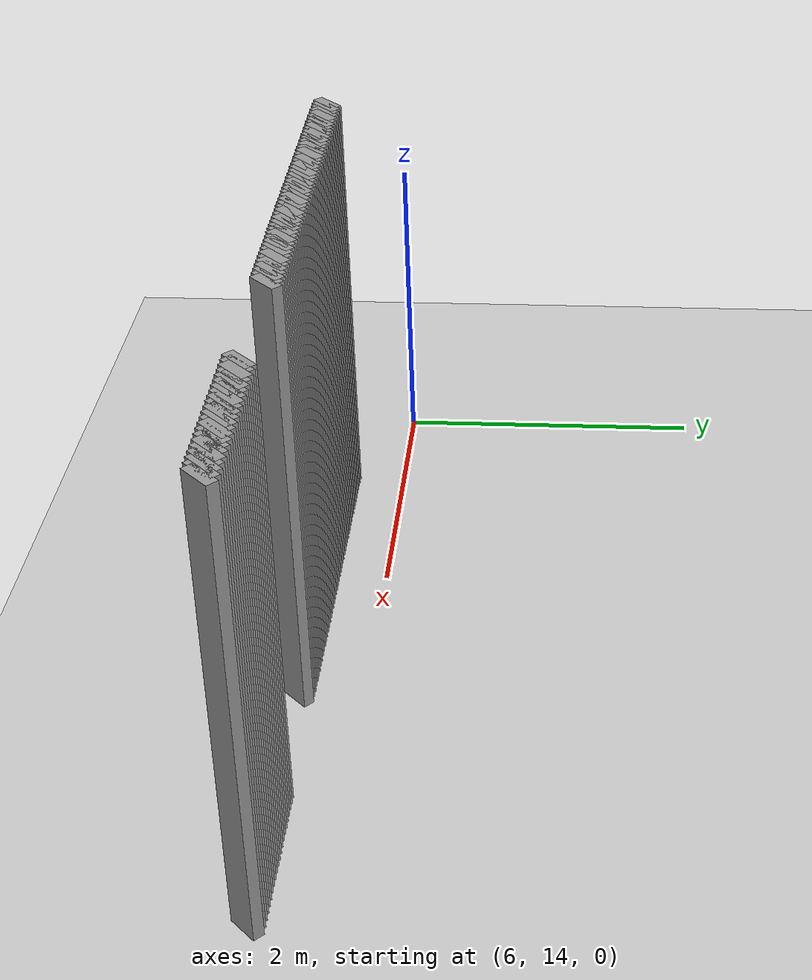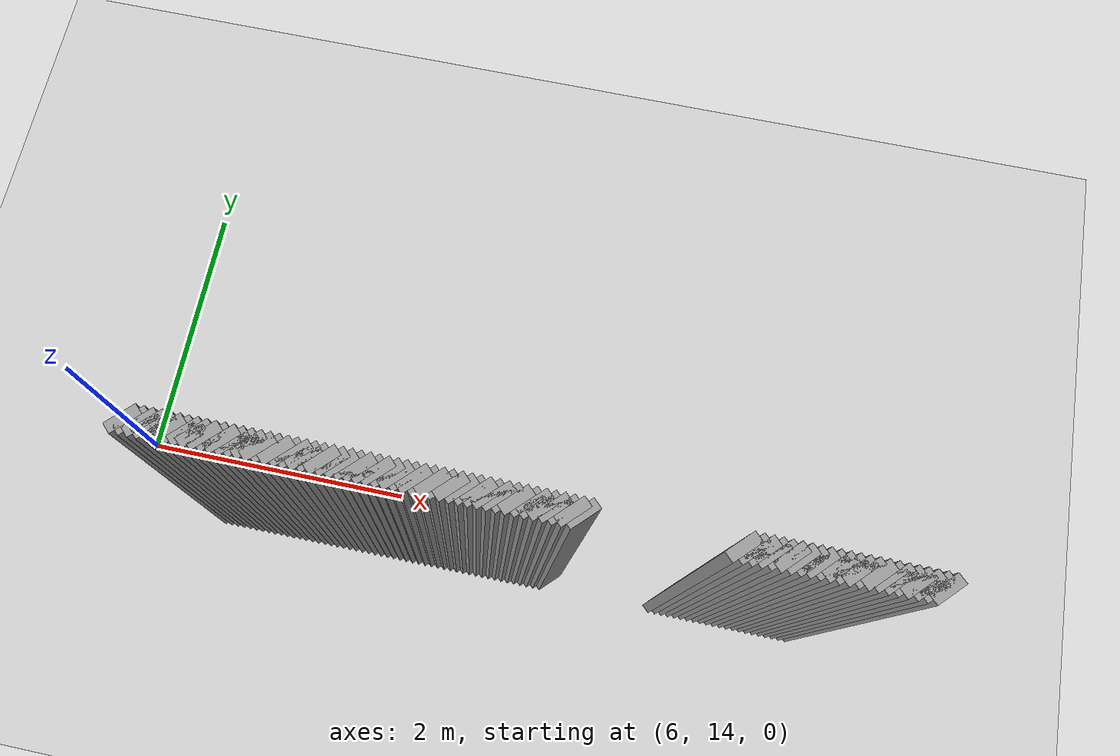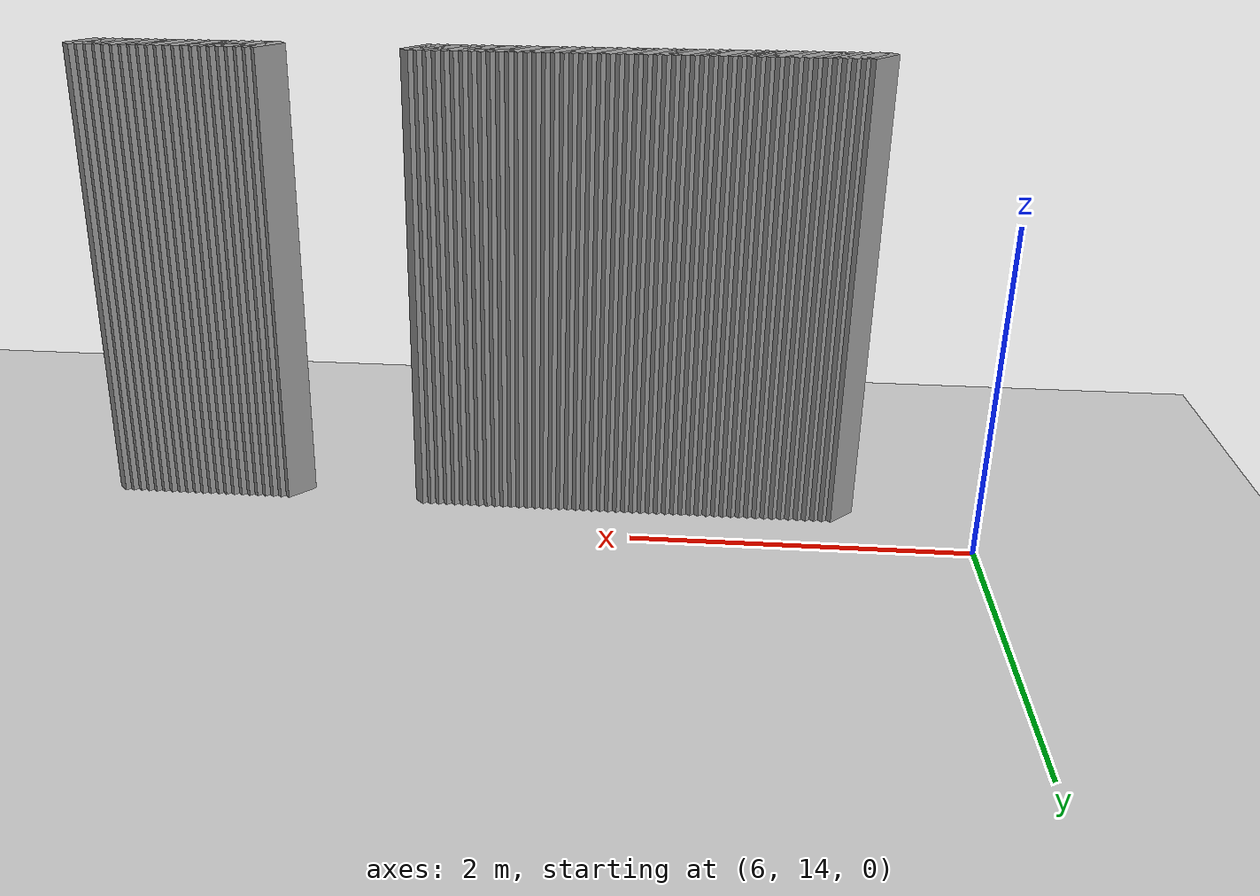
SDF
<sdf version="1.5">
 <world name="default">
  <include><uri>model://ground_plane</uri></include>
  <include><uri>model://sun</uri></include>
  <model name="grey_wall_891">
   <static>1</static>
   <link name="link">
    <pose>6.75 13.600000000000001  1.4 0 0 -0.7853981633974483</pose>
    <collision name="collision">
     <geometry><box><size>0.07071067811865576 .2  2.8</size></box></geometry>
    </collision>
    <visual name="visual">
     <cast_shadows>0</cast_shadows>
     <geometry><box><size>0.07071067811865576 .2  2.8</size></box></geometry>
     <material>
      <script>
       <uri>model://grey_wall/materials/scripts</uri>
       <uri>model://grey_wall/materials/textures</uri>
       <name>vrc/grey_wall</name>
      </script>
     </material>
    </visual>
   </link>
  </model>
  <model name="grey_wall_892">
   <static>1</static>
   <link name="link">
    <pose>6.800000000000001 13.600000000000001  1.4 0 0 -0.7853981633974483</pose>
    <collision name="collision">
     <geometry><box><size>0.07071067811865576 .2  2.8</size></box></geometry>
    </collision>
    <visual name="visual">
     <cast_shadows>0</cast_shadows>
     <geometry><box><size>0.07071067811865576 .2  2.8</size></box></geometry>
     <material>
      <script>
       <uri>model://grey_wall/materials/scripts</uri>
       <uri>model://grey_wall/materials/textures</uri>
       <name>vrc/grey_wall</name>
      </script>
     </material>
    </visual>
   </link>
  </model>
  <model name="grey_wall_893">
   <static>1</static>
   <link name="link">
    <pose>6.8500000000000005 13.600000000000001  1.4 0 0 -0.7853981633974483</pose>
    <collision name="collision">
     <geometry><box><size>0.07071067811865576 .2  2.8</size></box></geometry>
    </collision>
    <visual name="visual">
     <cast_shadows>0</cast_shadows>
     <geometry><box><size>0.07071067811865576 .2  2.8</size></box></geometry>
     <material>
      <script>
       <uri>model://grey_wall/materials/scripts</uri>
       <uri>model://grey_wall/materials/textures</uri>
       <name>vrc/grey_wall</name>
      </script>
     </material>
    </visual>
   </link>
  </model>
  <model name="grey_wall_894">
   <static>1</static>
   <link name="link">
    <pose>6.9 13.600000000000001  1.4 0 0 -0.7853981633974483</pose>
    <collision name="collision">
     <geometry><box><size>0.07071067811865576 .2  2.8</size></box></geometry>
    </collision>
    <visual name="visual">
     <cast_shadows>0</cast_shadows>
     <geometry><box><size>0.07071067811865576 .2  2.8</size></box></geometry>
     <material>
      <script>
       <uri>model://grey_wall/materials/scripts</uri>
       <uri>model://grey_wall/materials/textures</uri>
       <name>vrc/grey_wall</name>
      </script>
     </material>
    </visual>
   </link>
  </model>
  <model name="grey_wall_895">
   <static>1</static>
   <link name="link">
    <pose>6.95 13.600000000000001  1.4 0 0 -0.7853981633974483</pose>
    <collision name="collision">
     <geometry><box><size>0.07071067811865576 .2  2.8</size></box></geometry>
    </collision>
    <visual name="visual">
     <cast_shadows>0</cast_shadows>
     <geometry><box><size>0.07071067811865576 .2  2.8</size></box></geometry>
     <material>
      <script>
       <uri>model://grey_wall/materials/scripts</uri>
       <uri>model://grey_wall/materials/textures</uri>
       <name>vrc/grey_wall</name>
      </script>
     </material>
    </visual>
   </link>
  </model>
  <model name="grey_wall_896">
   <static>1</static>
   <link name="link">
    <pose>7.0 13.600000000000001  1.4 0 0 -0.7853981633974483</pose>
    <collision name="collision">
     <geometry><box><size>0.07071067811865576 .2  2.8</size></box></geometry>
    </collision>
    <visual name="visual">
     <cast_shadows>0</cast_shadows>
     <geometry><box><size>0.07071067811865576 .2  2.8</size></box></geometry>
     <material>
      <script>
       <uri>model://grey_wall/materials/scripts</uri>
       <uri>model://grey_wall/materials/textures</uri>
       <name>vrc/grey_wall</name>
      </script>
     </material>
    </visual>
   </link>
  </model>
  <model name="grey_wall_897">
   <static>1</static>
   <link name="link">
    <pose>7.050000000000001 13.600000000000001  1.4 0 0 -0.7853981633974483</pose>
    <collision name="collision">
     <geometry><box><size>0.07071067811865576 .2  2.8</size></box></geometry>
    </collision>
    <visual name="visual">
     <cast_shadows>0</cast_shadows>
     <geometry><box><size>0.07071067811865576 .2  2.8</size></box></geometry>
     <material>
      <script>
       <uri>model://grey_wall/materials/scripts</uri>
       <uri>model://grey_wall/materials/textures</uri>
       <name>vrc/grey_wall</name>
      </script>
     </material>
    </visual>
   </link>
  </model>
  <model name="grey_wall_898">
   <static>1</static>
   <link name="link">
    <pose>7.1000000000000005 13.600000000000001  1.4 0 0 -0.7853981633974483</pose>
    <collision name="collision">
     <geometry><box><size>0.07071067811865576 .2  2.8</size></box></geometry>
    </collision>
    <visual name="visual">
     <cast_shadows>0</cast_shadows>
     <geometry><box><size>0.07071067811865576 .2  2.8</size></box></geometry>
     <material>
      <script>
       <uri>model://grey_wall/materials/scripts</uri>
       <uri>model://grey_wall/materials/textures</uri>
       <name>vrc/grey_wall</name>
      </script>
     </material>
    </visual>
   </link>
  </model>
  <model name="grey_wall_899">
   <static>1</static>
   <link name="link">
    <pose>7.15 13.600000000000001  1.4 0 0 -0.7853981633974483</pose>
    <collision name="collision">
     <geometry><box><size>0.07071067811865576 .2  2.8</size></box></geometry>
    </collision>
    <visual name="visual">
     <cast_shadows>0</cast_shadows>
     <geometry><box><size>0.07071067811865576 .2  2.8</size></box></geometry>
     <material>
      <script>
       <uri>model://grey_wall/materials/scripts</uri>
       <uri>model://grey_wall/materials/textures</uri>
       <name>vrc/grey_wall</name>
      </script>
     </material>
    </visual>
   </link>
  </model>
  <model name="grey_wall_900">
   <static>1</static>
   <link name="link">
    <pose>7.2 13.600000000000001  1.4 0 0 -0.7853981633974483</pose>
    <collision name="collision">
     <geometry><box><size>0.07071067811865576 .2  2.8</size></box></geometry>
    </collision>
    <visual name="visual">
     <cast_shadows>0</cast_shadows>
     <geometry><box><size>0.07071067811865576 .2  2.8</size></box></geometry>
     <material>
      <script>
       <uri>model://grey_wall/materials/scripts</uri>
       <uri>model://grey_wall/materials/textures</uri>
       <name>vrc/grey_wall</name>
      </script>
     </material>
    </visual>
   </link>
  </model>
  <model name="grey_wall_901">
   <static>1</static>
   <link name="link">
    <pose>7.25 13.600000000000001  1.4 0 0 -0.7853981633974483</pose>
    <collision name="collision">
     <geometry><box><size>0.07071067811865576 .2  2.8</size></box></geometry>
    </collision>
    <visual name="visual">
     <cast_shadows>0</cast_shadows>
     <geometry><box><size>0.07071067811865576 .2  2.8</size></box></geometry>
     <material>
      <script>
       <uri>model://grey_wall/materials/scripts</uri>
       <uri>model://grey_wall/materials/textures</uri>
       <name>vrc/grey_wall</name>
      </script>
     </material>
    </visual>
   </link>
  </model>
  <model name="grey_wall_902">
   <static>1</static>
   <link name="link">
    <pose>7.300000000000001 13.600000000000001  1.4 0 0 -0.7853981633974483</pose>
    <collision name="collision">
     <geometry><box><size>0.07071067811865576 .2  2.8</size></box></geometry>
    </collision>
    <visual name="visual">
     <cast_shadows>0</cast_shadows>
     <geometry><box><size>0.07071067811865576 .2  2.8</size></box></geometry>
     <material>
      <script>
       <uri>model://grey_wall/materials/scripts</uri>
       <uri>model://grey_wall/materials/textures</uri>
       <name>vrc/grey_wall</name>
      </script>
     </material>
    </visual>
   </link>
  </model>
  <model name="grey_wall_903">
   <static>1</static>
   <link name="link">
    <pose>7.3500000000000005 13.600000000000001  1.4 0 0 -0.7853981633974483</pose>
    <collision name="collision">
     <geometry><box><size>0.07071067811865576 .2  2.8</size></box></geometry>
    </collision>
    <visual name="visual">
     <cast_shadows>0</cast_shadows>
     <geometry><box><size>0.07071067811865576 .2  2.8</size></box></geometry>
     <material>
      <script>
       <uri>model://grey_wall/materials/scripts</uri>
       <uri>model://grey_wall/materials/textures</uri>
       <name>vrc/grey_wall</name>
      </script>
     </material>
    </visual>
   </link>
  </model>
  <model name="grey_wall_904">
   <static>1</static>
   <link name="link">
    <pose>7.4 13.600000000000001  1.4 0 0 -0.7853981633974483</pose>
    <collision name="collision">
     <geometry><box><size>0.07071067811865576 .2  2.8</size></box></geometry>
    </collision>
    <visual name="visual">
     <cast_shadows>0</cast_shadows>
     <geometry><box><size>0.07071067811865576 .2  2.8</size></box></geometry>
     <material>
      <script>
       <uri>model://grey_wall/materials/scripts</uri>
       <uri>model://grey_wall/materials/textures</uri>
       <name>vrc/grey_wall</name>
      </script>
     </material>
    </visual>
   </link>
  </model>
  <model name="grey_wall_905">
   <static>1</static>
   <link name="link">
    <pose>7.45 13.600000000000001  1.4 0 0 -0.7853981633974483</pose>
    <collision name="collision">
     <geometry><box><size>0.07071067811865576 .2  2.8</size></box></geometry>
    </collision>
    <visual name="visual">
     <cast_shadows>0</cast_shadows>
     <geometry><box><size>0.07071067811865576 .2  2.8</size></box></geometry>
     <material>
      <script>
       <uri>model://grey_wall/materials/scripts</uri>
       <uri>model://grey_wall/materials/textures</uri>
       <name>vrc/grey_wall</name>
      </script>
     </material>
    </visual>
   </link>
  </model>
  <model name="grey_wall_906">
   <static>1</static>
   <link name="link">
    <pose>7.5 13.600000000000001  1.4 0 0 -0.7853981633974483</pose>
    <collision name="collision">
     <geometry><box><size>0.07071067811865576 .2  2.8</size></box></geometry>
    </collision>
    <visual name="visual">
     <cast_shadows>0</cast_shadows>
     <geometry><box><size>0.07071067811865576 .2  2.8</size></box></geometry>
     <material>
      <script>
       <uri>model://grey_wall/materials/scripts</uri>
       <uri>model://grey_wall/materials/textures</uri>
       <name>vrc/grey_wall</name>
      </script>
     </material>
    </visual>
   </link>
  </model>
  <model name="grey_wall_907">
   <static>1</static>
   <link name="link">
    <pose>7.550000000000001 13.600000000000001  1.4 0 0 -0.7853981633974483</pose>
    <collision name="collision">
     <geometry><box><size>0.07071067811865576 .2  2.8</size></box></geometry>
    </collision>
    <visual name="visual">
     <cast_shadows>0</cast_shadows>
     <geometry><box><size>0.07071067811865576 .2  2.8</size></box></geometry>
     <material>
      <script>
       <uri>model://grey_wall/materials/scripts</uri>
       <uri>model://grey_wall/materials/textures</uri>
       <name>vrc/grey_wall</name>
      </script>
     </material>
    </visual>
   </link>
  </model>
  <model name="grey_wall_908">
   <static>1</static>
   <link name="link">
    <pose>7.6000000000000005 13.600000000000001  1.4 0 0 -0.7853981633974483</pose>
    <collision name="collision">
     <geometry><box><size>0.07071067811865576 .2  2.8</size></box></geometry>
    </collision>
    <visual name="visual">
     <cast_shadows>0</cast_shadows>
     <geometry><box><size>0.07071067811865576 .2  2.8</size></box></geometry>
     <material>
      <script>
       <uri>model://grey_wall/materials/scripts</uri>
       <uri>model://grey_wall/materials/textures</uri>
       <name>vrc/grey_wall</name>
      </script>
     </material>
    </visual>
   </link>
  </model>
  <model name="grey_wall_909">
   <static>1</static>
   <link name="link">
    <pose>7.65 13.600000000000001  1.4 0 0 -0.7853981633974483</pose>
    <collision name="collision">
     <geometry><box><size>0.07071067811865576 .2  2.8</size></box></geometry>
    </collision>
    <visual name="visual">
     <cast_shadows>0</cast_shadows>
     <geometry><box><size>0.07071067811865576 .2  2.8</size></box></geometry>
     <material>
      <script>
       <uri>model://grey_wall/materials/scripts</uri>
       <uri>model://grey_wall/materials/textures</uri>
       <name>vrc/grey_wall</name>
      </script>
     </material>
    </visual>
   </link>
  </model>
  <model name="grey_wall_910">
   <static>1</static>
   <link name="link">
    <pose>7.7 13.600000000000001  1.4 0 0 -0.7853981633974483</pose>
    <collision name="collision">
     <geometry><box><size>0.07071067811865576 .2  2.8</size></box></geometry>
    </collision>
    <visual name="visual">
     <cast_shadows>0</cast_shadows>
     <geometry><box><size>0.07071067811865576 .2  2.8</size></box></geometry>
     <material>
      <script>
       <uri>model://grey_wall/materials/scripts</uri>
       <uri>model://grey_wall/materials/textures</uri>
       <name>vrc/grey_wall</name>
      </script>
     </material>
    </visual>
   </link>
  </model>
  <model name="grey_wall_911">
   <static>1</static>
   <link name="link">
    <pose>7.75 13.600000000000001  1.4 0 0 -0.7853981633974483</pose>
    <collision name="collision">
     <geometry><box><size>0.07071067811865576 .2  2.8</size></box></geometry>
    </collision>
    <visual name="visual">
     <cast_shadows>0</cast_shadows>
     <geometry><box><size>0.07071067811865576 .2  2.8</size></box></geometry>
     <material>
      <script>
       <uri>model://grey_wall/materials/scripts</uri>
       <uri>model://grey_wall/materials/textures</uri>
       <name>vrc/grey_wall</name>
      </script>
     </material>
    </visual>
   </link>
  </model>
  <model name="grey_wall_912">
   <static>1</static>
   <link name="link">
    <pose>7.800000000000001 13.600000000000001  1.4 0 0 -0.7853981633974483</pose>
    <collision name="collision">
     <geometry><box><size>0.07071067811865576 .2  2.8</size></box></geometry>
    </collision>
    <visual name="visual">
     <cast_shadows>0</cast_shadows>
     <geometry><box><size>0.07071067811865576 .2  2.8</size></box></geometry>
     <material>
      <script>
       <uri>model://grey_wall/materials/scripts</uri>
       <uri>model://grey_wall/materials/textures</uri>
       <name>vrc/grey_wall</name>
      </script>
     </material>
    </visual>
   </link>
  </model>
  <model name="grey_wall_913">
   <static>1</static>
   <link name="link">
    <pose>7.8500000000000005 13.600000000000001  1.4 0 0 -0.7853981633974483</pose>
    <collision name="collision">
     <geometry><box><size>0.07071067811865576 .2  2.8</size></box></geometry>
    </collision>
    <visual name="visual">
     <cast_shadows>0</cast_shadows>
     <geometry><box><size>0.07071067811865576 .2  2.8</size></box></geometry>
     <material>
      <script>
       <uri>model://grey_wall/materials/scripts</uri>
       <uri>model://grey_wall/materials/textures</uri>
       <name>vrc/grey_wall</name>
      </script>
     </material>
    </visual>
   </link>
  </model>
  <model name="grey_wall_914">
   <static>1</static>
   <link name="link">
    <pose>7.9 13.600000000000001  1.4 0 0 -0.7853981633974483</pose>
    <collision name="collision">
     <geometry><box><size>0.07071067811865576 .2  2.8</size></box></geometry>
    </collision>
    <visual name="visual">
     <cast_shadows>0</cast_shadows>
     <geometry><box><size>0.07071067811865576 .2  2.8</size></box></geometry>
     <material>
      <script>
       <uri>model://grey_wall/materials/scripts</uri>
       <uri>model://grey_wall/materials/textures</uri>
       <name>vrc/grey_wall</name>
      </script>
     </material>
    </visual>
   </link>
  </model>
  <model name="grey_wall_915">
   <static>1</static>
   <link name="link">
    <pose>7.95 13.600000000000001  1.4 0 0 -0.7853981633974483</pose>
    <collision name="collision">
     <geometry><box><size>0.07071067811865576 .2  2.8</size></box></geometry>
    </collision>
    <visual name="visual">
     <cast_shadows>0</cast_shadows>
     <geometry><box><size>0.07071067811865576 .2  2.8</size></box></geometry>
     <material>
      <script>
       <uri>model://grey_wall/materials/scripts</uri>
       <uri>model://grey_wall/materials/textures</uri>
       <name>vrc/grey_wall</name>
      </script>
     </material>
    </visual>
   </link>
  </model>
  <model name="grey_wall_916">
   <static>1</static>
   <link name="link">
    <pose>8.0 13.600000000000001  1.4 0 0 -0.7853981633974483</pose>
    <collision name="collision">
     <geometry><box><size>0.07071067811865576 .2  2.8</size></box></geometry>
    </collision>
    <visual name="visual">
     <cast_shadows>0</cast_shadows>
     <geometry><box><size>0.07071067811865576 .2  2.8</size></box></geometry>
     <material>
      <script>
       <uri>model://grey_wall/materials/scripts</uri>
       <uri>model://grey_wall/materials/textures</uri>
       <name>vrc/grey_wall</name>
      </script>
     </material>
    </visual>
   </link>
  </model>
  <model name="grey_wall_917">
   <static>1</static>
   <link name="link">
    <pose>8.05 13.600000000000001  1.4 0 0 -0.7853981633974483</pose>
    <collision name="collision">
     <geometry><box><size>0.07071067811865576 .2  2.8</size></box></geometry>
    </collision>
    <visual name="visual">
     <cast_shadows>0</cast_shadows>
     <geometry><box><size>0.07071067811865576 .2  2.8</size></box></geometry>
     <material>
      <script>
       <uri>model://grey_wall/materials/scripts</uri>
       <uri>model://grey_wall/materials/textures</uri>
       <name>vrc/grey_wall</name>
      </script>
     </material>
    </visual>
   </link>
  </model>
  <model name="grey_wall_918">
   <static>1</static>
   <link name="link">
    <pose>8.1 13.600000000000001  1.4 0 0 -0.7853981633974483</pose>
    <collision name="collision">
     <geometry><box><size>0.07071067811865576 .2  2.8</size></box></geometry>
    </collision>
    <visual name="visual">
     <cast_shadows>0</cast_shadows>
     <geometry><box><size>0.07071067811865576 .2  2.8</size></box></geometry>
     <material>
      <script>
       <uri>model://grey_wall/materials/scripts</uri>
       <uri>model://grey_wall/materials/textures</uri>
       <name>vrc/grey_wall</name>
      </script>
     </material>
    </visual>
   </link>
  </model>
  <model name="grey_wall_919">
   <static>1</static>
   <link name="link">
    <pose>8.15 13.600000000000001  1.4 0 0 -0.7853981633974483</pose>
    <collision name="collision">
     <geometry><box><size>0.07071067811865576 .2  2.8</size></box></geometry>
    </collision>
    <visual name="visual">
     <cast_shadows>0</cast_shadows>
     <geometry><box><size>0.07071067811865576 .2  2.8</size></box></geometry>
     <material>
      <script>
       <uri>model://grey_wall/materials/scripts</uri>
       <uri>model://grey_wall/materials/textures</uri>
       <name>vrc/grey_wall</name>
      </script>
     </material>
    </visual>
   </link>
  </model>
  <model name="grey_wall_920">
   <static>1</static>
   <link name="link">
    <pose>8.200000000000001 13.600000000000001  1.4 0 0 -0.7853981633974483</pose>
    <collision name="collision">
     <geometry><box><size>0.07071067811865576 .2  2.8</size></box></geometry>
    </collision>
    <visual name="visual">
     <cast_shadows>0</cast_shadows>
     <geometry><box><size>0.07071067811865576 .2  2.8</size></box></geometry>
     <material>
      <script>
       <uri>model://grey_wall/materials/scripts</uri>
       <uri>model://grey_wall/materials/textures</uri>
       <name>vrc/grey_wall</name>
      </script>
     </material>
    </visual>
   </link>
  </model>
  <model name="grey_wall_921">
   <static>1</static>
   <link name="link">
    <pose>8.25 13.600000000000001  1.4 0 0 -0.7853981633974483</pose>
    <collision name="collision">
     <geometry><box><size>0.07071067811865576 .2  2.8</size></box></geometry>
    </collision>
    <visual name="visual">
     <cast_shadows>0</cast_shadows>
     <geometry><box><size>0.07071067811865576 .2  2.8</size></box></geometry>
     <material>
      <script>
       <uri>model://grey_wall/materials/scripts</uri>
       <uri>model://grey_wall/materials/textures</uri>
       <name>vrc/grey_wall</name>
      </script>
     </material>
    </visual>
   </link>
  </model>
  <model name="grey_wall_922">
   <static>1</static>
   <link name="link">
    <pose>8.3 13.600000000000001  1.4 0 0 -0.7853981633974483</pose>
    <collision name="collision">
     <geometry><box><size>0.07071067811865576 .2  2.8</size></box></geometry>
    </collision>
    <visual name="visual">
     <cast_shadows>0</cast_shadows>
     <geometry><box><size>0.07071067811865576 .2  2.8</size></box></geometry>
     <material>
      <script>
       <uri>model://grey_wall/materials/scripts</uri>
       <uri>model://grey_wall/materials/textures</uri>
       <name>vrc/grey_wall</name>
      </script>
     </material>
    </visual>
   </link>
  </model>
  <model name="grey_wall_923">
   <static>1</static>
   <link name="link">
    <pose>8.35 13.600000000000001  1.4 0 0 -0.7853981633974483</pose>
    <collision name="collision">
     <geometry><box><size>0.07071067811865576 .2  2.8</size></box></geometry>
    </collision>
    <visual name="visual">
     <cast_shadows>0</cast_shadows>
     <geometry><box><size>0.07071067811865576 .2  2.8</size></box></geometry>
     <material>
      <script>
       <uri>model://grey_wall/materials/scripts</uri>
       <uri>model://grey_wall/materials/textures</uri>
       <name>vrc/grey_wall</name>
      </script>
     </material>
    </visual>
   </link>
  </model>
  <model name="grey_wall_924">
   <static>1</static>
   <link name="link">
    <pose>8.4 13.600000000000001  1.4 0 0 -0.7853981633974483</pose>
    <collision name="collision">
     <geometry><box><size>0.07071067811865576 .2  2.8</size></box></geometry>
    </collision>
    <visual name="visual">
     <cast_shadows>0</cast_shadows>
     <geometry><box><size>0.07071067811865576 .2  2.8</size></box></geometry>
     <material>
      <script>
       <uri>model://grey_wall/materials/scripts</uri>
       <uri>model://grey_wall/materials/textures</uri>
       <name>vrc/grey_wall</name>
      </script>
     </material>
    </visual>
   </link>
  </model>
  <model name="grey_wall_925">
   <static>1</static>
   <link name="link">
    <pose>8.450000000000001 13.600000000000001  1.4 0 0 -0.7853981633974483</pose>
    <collision name="collision">
     <geometry><box><size>0.07071067811865576 .2  2.8</size></box></geometry>
    </collision>
    <visual name="visual">
     <cast_shadows>0</cast_shadows>
     <geometry><box><size>0.07071067811865576 .2  2.8</size></box></geometry>
     <material>
      <script>
       <uri>model://grey_wall/materials/scripts</uri>
       <uri>model://grey_wall/materials/textures</uri>
       <name>vrc/grey_wall</name>
      </script>
     </material>
    </visual>
   </link>
  </model>
  <model name="grey_wall_926">
   <static>1</static>
   <link name="link">
    <pose>8.5 13.600000000000001  1.4 0 0 -0.7853981633974483</pose>
    <collision name="collision">
     <geometry><box><size>0.07071067811865576 .2  2.8</size></box></geometry>
    </collision>
    <visual name="visual">
     <cast_shadows>0</cast_shadows>
     <geometry><box><size>0.07071067811865576 .2  2.8</size></box></geometry>
     <material>
      <script>
       <uri>model://grey_wall/materials/scripts</uri>
       <uri>model://grey_wall/materials/textures</uri>
       <name>vrc/grey_wall</name>
      </script>
     </material>
    </visual>
   </link>
  </model>
  <model name="grey_wall_927">
   <static>1</static>
   <link name="link">
    <pose>8.55 13.600000000000001  1.4 0 0 -0.7853981633974483</pose>
    <collision name="collision">
     <geometry><box><size>0.07071067811865576 .2  2.8</size></box></geometry>
    </collision>
    <visual name="visual">
     <cast_shadows>0</cast_shadows>
     <geometry><box><size>0.07071067811865576 .2  2.8</size></box></geometry>
     <material>
      <script>
       <uri>model://grey_wall/materials/scripts</uri>
       <uri>model://grey_wall/materials/textures</uri>
       <name>vrc/grey_wall</name>
      </script>
     </material>
    </visual>
   </link>
  </model>
  <model name="grey_wall_928">
   <static>1</static>
   <link name="link">
    <pose>8.6 13.600000000000001  1.4 0 0 -0.7853981633974483</pose>
    <collision name="collision">
     <geometry><box><size>0.07071067811865576 .2  2.8</size></box></geometry>
    </collision>
    <visual name="visual">
     <cast_shadows>0</cast_shadows>
     <geometry><box><size>0.07071067811865576 .2  2.8</size></box></geometry>
     <material>
      <script>
       <uri>model://grey_wall/materials/scripts</uri>
       <uri>model://grey_wall/materials/textures</uri>
       <name>vrc/grey_wall</name>
      </script>
     </material>
    </visual>
   </link>
  </model>
  <model name="grey_wall_929">
   <static>1</static>
   <link name="link">
    <pose>8.65 13.600000000000001  1.4 0 0 -0.7853981633974483</pose>
    <collision name="collision">
     <geometry><box><size>0.07071067811865576 .2  2.8</size></box></geometry>
    </collision>
    <visual name="visual">
     <cast_shadows>0</cast_shadows>
     <geometry><box><size>0.07071067811865576 .2  2.8</size></box></geometry>
     <material>
      <script>
       <uri>model://grey_wall/materials/scripts</uri>
       <uri>model://grey_wall/materials/textures</uri>
       <name>vrc/grey_wall</name>
      </script>
     </material>
    </visual>
   </link>
  </model>
  <model name="grey_wall_930">
   <static>1</static>
   <link name="link">
    <pose>8.700000000000001 13.600000000000001  1.4 0 0 -0.7853981633974483</pose>
    <collision name="collision">
     <geometry><box><size>0.07071067811865576 .2  2.8</size></box></geometry>
    </collision>
    <visual name="visual">
     <cast_shadows>0</cast_shadows>
     <geometry><box><size>0.07071067811865576 .2  2.8</size></box></geometry>
     <material>
      <script>
       <uri>model://grey_wall/materials/scripts</uri>
       <uri>model://grey_wall/materials/textures</uri>
       <name>vrc/grey_wall</name>
      </script>
     </material>
    </visual>
   </link>
  </model>
  <model name="grey_wall_931">
   <static>1</static>
   <link name="link">
    <pose>8.75 13.600000000000001  1.4 0 0 -0.7853981633974483</pose>
    <collision name="collision">
     <geometry><box><size>0.07071067811865576 .2  2.8</size></box></geometry>
    </collision>
    <visual name="visual">
     <cast_shadows>0</cast_shadows>
     <geometry><box><size>0.07071067811865576 .2  2.8</size></box></geometry>
     <material>
      <script>
       <uri>model://grey_wall/materials/scripts</uri>
       <uri>model://grey_wall/materials/textures</uri>
       <name>vrc/grey_wall</name>
      </script>
     </material>
    </visual>
   </link>
  </model>
  <model name="grey_wall_932">
   <static>1</static>
   <link name="link">
    <pose>8.8 13.600000000000001  1.4 0 0 -0.7853981633974483</pose>
    <collision name="collision">
     <geometry><box><size>0.07071067811865576 .2  2.8</size></box></geometry>
    </collision>
    <visual name="visual">
     <cast_shadows>0</cast_shadows>
     <geometry><box><size>0.07071067811865576 .2  2.8</size></box></geometry>
     <material>
      <script>
       <uri>model://grey_wall/materials/scripts</uri>
       <uri>model://grey_wall/materials/textures</uri>
       <name>vrc/grey_wall</name>
      </script>
     </material>
    </visual>
   </link>
  </model>
  <model name="grey_wall_933">
   <static>1</static>
   <link name="link">
    <pose>8.85 13.600000000000001  1.4 0 0 -0.7853981633974483</pose>
    <collision name="collision">
     <geometry><box><size>0.07071067811865576 .2  2.8</size></box></geometry>
    </collision>
    <visual name="visual">
     <cast_shadows>0</cast_shadows>
     <geometry><box><size>0.07071067811865576 .2  2.8</size></box></geometry>
     <material>
      <script>
       <uri>model://grey_wall/materials/scripts</uri>
       <uri>model://grey_wall/materials/textures</uri>
       <name>vrc/grey_wall</name>
      </script>
     </material>
    </visual>
   </link>
  </model>
  <model name="grey_wall_934">
   <static>1</static>
   <link name="link">
    <pose>8.9 13.600000000000001  1.4 0 0 -0.7853981633974483</pose>
    <collision name="collision">
     <geometry><box><size>0.07071067811865576 .2  2.8</size></box></geometry>
    </collision>
    <visual name="visual">
     <cast_shadows>0</cast_shadows>
     <geometry><box><size>0.07071067811865576 .2  2.8</size></box></geometry>
     <material>
      <script>
       <uri>model://grey_wall/materials/scripts</uri>
       <uri>model://grey_wall/materials/textures</uri>
       <name>vrc/grey_wall</name>
      </script>
     </material>
    </visual>
   </link>
  </model>
  <model name="grey_wall_935">
   <static>1</static>
   <link name="link">
    <pose>8.950000000000001 13.600000000000001  1.4 0 0 -0.7853981633974483</pose>
    <collision name="collision">
     <geometry><box><size>0.07071067811865576 .2  2.8</size></box></geometry>
    </collision>
    <visual name="visual">
     <cast_shadows>0</cast_shadows>
     <geometry><box><size>0.07071067811865576 .2  2.8</size></box></geometry>
     <material>
      <script>
       <uri>model://grey_wall/materials/scripts</uri>
       <uri>model://grey_wall/materials/textures</uri>
       <name>vrc/grey_wall</name>
      </script>
     </material>
    </visual>
   </link>
  </model>
  <model name="grey_wall_936">
   <static>1</static>
   <link name="link">
    <pose>9.0 13.600000000000001  1.4 0 0 -0.7853981633974483</pose>
    <collision name="collision">
     <geometry><box><size>0.07071067811865576 .2  2.8</size></box></geometry>
    </collision>
    <visual name="visual">
     <cast_shadows>0</cast_shadows>
     <geometry><box><size>0.07071067811865576 .2  2.8</size></box></geometry>
     <material>
      <script>
       <uri>model://grey_wall/materials/scripts</uri>
       <uri>model://grey_wall/materials/textures</uri>
       <name>vrc/grey_wall</name>
      </script>
     </material>
    </visual>
   </link>
  </model>
  <model name="grey_wall_937">
   <static>1</static>
   <link name="link">
    <pose>9.05 13.600000000000001  1.4 0 0 -0.7853981633974483</pose>
    <collision name="collision">
     <geometry><box><size>0.07071067811865576 .2  2.8</size></box></geometry>
    </collision>
    <visual name="visual">
     <cast_shadows>0</cast_shadows>
     <geometry><box><size>0.07071067811865576 .2  2.8</size></box></geometry>
     <material>
      <script>
       <uri>model://grey_wall/materials/scripts</uri>
       <uri>model://grey_wall/materials/textures</uri>
       <name>vrc/grey_wall</name>
      </script>
     </material>
    </visual>
   </link>
  </model>
  <model name="grey_wall_938">
   <static>1</static>
   <link name="link">
    <pose>9.1 13.600000000000001  1.4 0 0 -0.7853981633974483</pose>
    <collision name="collision">
     <geometry><box><size>0.07071067811865576 .2  2.8</size></box></geometry>
    </collision>
    <visual name="visual">
     <cast_shadows>0</cast_shadows>
     <geometry><box><size>0.07071067811865576 .2  2.8</size></box></geometry>
     <material>
      <script>
       <uri>model://grey_wall/materials/scripts</uri>
       <uri>model://grey_wall/materials/textures</uri>
       <name>vrc/grey_wall</name>
      </script>
     </material>
    </visual>
   </link>
  </model>
  <model name="grey_wall_939">
   <static>1</static>
   <link name="link">
    <pose>9.15 13.600000000000001  1.4 0 0 -0.7853981633974483</pose>
    <collision name="collision">
     <geometry><box><size>0.07071067811865576 .2  2.8</size></box></geometry>
    </collision>
    <visual name="visual">
     <cast_shadows>0</cast_shadows>
     <geometry><box><size>0.07071067811865576 .2  2.8</size></box></geometry>
     <material>
      <script>
       <uri>model://grey_wall/materials/scripts</uri>
       <uri>model://grey_wall/materials/textures</uri>
       <name>vrc/grey_wall</name>
      </script>
     </material>
    </visual>
   </link>
  </model>
  <model name="grey_wall_940">
   <static>1</static>
   <link name="link">
    <pose>9.200000000000001 13.600000000000001  1.4 0 0 -0.7853981633974483</pose>
    <collision name="collision">
     <geometry><box><size>0.07071067811865576 .2  2.8</size></box></geometry>
    </collision>
    <visual name="visual">
     <cast_shadows>0</cast_shadows>
     <geometry><box><size>0.07071067811865576 .2  2.8</size></box></geometry>
     <material>
      <script>
       <uri>model://grey_wall/materials/scripts</uri>
       <uri>model://grey_wall/materials/textures</uri>
       <name>vrc/grey_wall</name>
      </script>
     </material>
    </visual>
   </link>
  </model>
  <model name="grey_wall_941">
   <static>1</static>
   <link name="link">
    <pose>9.25 13.600000000000001  1.4 0 0 -0.7853981633974483</pose>
    <collision name="collision">
     <geometry><box><size>0.07071067811865576 .2  2.8</size></box></geometry>
    </collision>
    <visual name="visual">
     <cast_shadows>0</cast_shadows>
     <geometry><box><size>0.07071067811865576 .2  2.8</size></box></geometry>
     <material>
      <script>
       <uri>model://grey_wall/materials/scripts</uri>
       <uri>model://grey_wall/materials/textures</uri>
       <name>vrc/grey_wall</name>
      </script>
     </material>
    </visual>
   </link>
  </model>
  <model name="grey_wall_942">
   <static>1</static>
   <link name="link">
    <pose>10.100000000000001 13.600000000000001  1.4 0 0 -0.7853981633974483</pose>
    <collision name="collision">
     <geometry><box><size>0.07071067811865576 .2  2.8</size></box></geometry>
    </collision>
    <visual name="visual">
     <cast_shadows>0</cast_shadows>
     <geometry><box><size>0.07071067811865576 .2  2.8</size></box></geometry>
     <material>
      <script>
       <uri>model://grey_wall/materials/scripts</uri>
       <uri>model://grey_wall/materials/textures</uri>
       <name>vrc/grey_wall</name>
      </script>
     </material>
    </visual>
   </link>
  </model>
  <model name="grey_wall_943">
   <static>1</static>
   <link name="link">
    <pose>10.15 13.600000000000001  1.4 0 0 -0.7853981633974483</pose>
    <collision name="collision">
     <geometry><box><size>0.07071067811865576 .2  2.8</size></box></geometry>
    </collision>
    <visual name="visual">
     <cast_shadows>0</cast_shadows>
     <geometry><box><size>0.07071067811865576 .2  2.8</size></box></geometry>
     <material>
      <script>
       <uri>model://grey_wall/materials/scripts</uri>
       <uri>model://grey_wall/materials/textures</uri>
       <name>vrc/grey_wall</name>
      </script>
     </material>
    </visual>
   </link>
  </model>
  <model name="grey_wall_944">
   <static>1</static>
   <link name="link">
    <pose>10.200000000000001 13.600000000000001  1.4 0 0 -0.7853981633974483</pose>
    <collision name="collision">
     <geometry><box><size>0.07071067811865576 .2  2.8</size></box></geometry>
    </collision>
    <visual name="visual">
     <cast_shadows>0</cast_shadows>
     <geometry><box><size>0.07071067811865576 .2  2.8</size></box></geometry>
     <material>
      <script>
       <uri>model://grey_wall/materials/scripts</uri>
       <uri>model://grey_wall/materials/textures</uri>
       <name>vrc/grey_wall</name>
      </script>
     </material>
    </visual>
   </link>
  </model>
  <model name="grey_wall_945">
   <static>1</static>
   <link name="link">
    <pose>10.25 13.600000000000001  1.4 0 0 -0.7853981633974483</pose>
    <collision name="collision">
     <geometry><box><size>0.07071067811865576 .2  2.8</size></box></geometry>
    </collision>
    <visual name="visual">
     <cast_shadows>0</cast_shadows>
     <geometry><box><size>0.07071067811865576 .2  2.8</size></box></geometry>
     <material>
      <script>
       <uri>model://grey_wall/materials/scripts</uri>
       <uri>model://grey_wall/materials/textures</uri>
       <name>vrc/grey_wall</name>
      </script>
     </material>
    </visual>
   </link>
  </model>
  <model name="grey_wall_946">
   <static>1</static>
   <link name="link">
    <pose>10.3 13.600000000000001  1.4 0 0 -0.7853981633974483</pose>
    <collision name="collision">
     <geometry><box><size>0.07071067811865576 .2  2.8</size></box></geometry>
    </collision>
    <visual name="visual">
     <cast_shadows>0</cast_shadows>
     <geometry><box><size>0.07071067811865576 .2  2.8</size></box></geometry>
     <material>
      <script>
       <uri>model://grey_wall/materials/scripts</uri>
       <uri>model://grey_wall/materials/textures</uri>
       <name>vrc/grey_wall</name>
      </script>
     </material>
    </visual>
   </link>
  </model>
  <model name="grey_wall_947">
   <static>1</static>
   <link name="link">
    <pose>10.350000000000001 13.600000000000001  1.4 0 0 -0.7853981633974483</pose>
    <collision name="collision">
     <geometry><box><size>0.07071067811865576 .2  2.8</size></box></geometry>
    </collision>
    <visual name="visual">
     <cast_shadows>0</cast_shadows>
     <geometry><box><size>0.07071067811865576 .2  2.8</size></box></geometry>
     <material>
      <script>
       <uri>model://grey_wall/materials/scripts</uri>
       <uri>model://grey_wall/materials/textures</uri>
       <name>vrc/grey_wall</name>
      </script>
     </material>
    </visual>
   </link>
  </model>
  <model name="grey_wall_948">
   <static>1</static>
   <link name="link">
    <pose>10.4 13.600000000000001  1.4 0 0 -0.7853981633974483</pose>
    <collision name="collision">
     <geometry><box><size>0.07071067811865576 .2  2.8</size></box></geometry>
    </collision>
    <visual name="visual">
     <cast_shadows>0</cast_shadows>
     <geometry><box><size>0.07071067811865576 .2  2.8</size></box></geometry>
     <material>
      <script>
       <uri>model://grey_wall/materials/scripts</uri>
       <uri>model://grey_wall/materials/textures</uri>
       <name>vrc/grey_wall</name>
      </script>
     </material>
    </visual>
   </link>
  </model>
  <model name="grey_wall_949">
   <static>1</static>
   <link name="link">
    <pose>10.450000000000001 13.600000000000001  1.4 0 0 -0.7853981633974483</pose>
    <collision name="collision">
     <geometry><box><size>0.07071067811865576 .2  2.8</size></box></geometry>
    </collision>
    <visual name="visual">
     <cast_shadows>0</cast_shadows>
     <geometry><box><size>0.07071067811865576 .2  2.8</size></box></geometry>
     <material>
      <script>
       <uri>model://grey_wall/materials/scripts</uri>
       <uri>model://grey_wall/materials/textures</uri>
       <name>vrc/grey_wall</name>
      </script>
     </material>
    </visual>
   </link>
  </model>
  <model name="grey_wall_950">
   <static>1</static>
   <link name="link">
    <pose>10.5 13.600000000000001  1.4 0 0 -0.7853981633974483</pose>
    <collision name="collision">
     <geometry><box><size>0.07071067811865576 .2  2.8</size></box></geometry>
    </collision>
    <visual name="visual">
     <cast_shadows>0</cast_shadows>
     <geometry><box><size>0.07071067811865576 .2  2.8</size></box></geometry>
     <material>
      <script>
       <uri>model://grey_wall/materials/scripts</uri>
       <uri>model://grey_wall/materials/textures</uri>
       <name>vrc/grey_wall</name>
      </script>
     </material>
    </visual>
   </link>
  </model>
  <model name="grey_wall_951">
   <static>1</static>
   <link name="link">
    <pose>10.55 13.600000000000001  1.4 0 0 -0.7853981633974483</pose>
    <collision name="collision">
     <geometry><box><size>0.07071067811865576 .2  2.8</size></box></geometry>
    </collision>
    <visual name="visual">
     <cast_shadows>0</cast_shadows>
     <geometry><box><size>0.07071067811865576 .2  2.8</size></box></geometry>
     <material>
      <script>
       <uri>model://grey_wall/materials/scripts</uri>
       <uri>model://grey_wall/materials/textures</uri>
       <name>vrc/grey_wall</name>
      </script>
     </material>
    </visual>
   </link>
  </model>
  <model name="grey_wall_952">
   <static>1</static>
   <link name="link">
    <pose>10.600000000000001 13.600000000000001  1.4 0 0 -0.7853981633974483</pose>
    <collision name="collision">
     <geometry><box><size>0.07071067811865576 .2  2.8</size></box></geometry>
    </collision>
    <visual name="visual">
     <cast_shadows>0</cast_shadows>
     <geometry><box><size>0.07071067811865576 .2  2.8</size></box></geometry>
     <material>
      <script>
       <uri>model://grey_wall/materials/scripts</uri>
       <uri>model://grey_wall/materials/textures</uri>
       <name>vrc/grey_wall</name>
      </script>
     </material>
    </visual>
   </link>
  </model>
  <model name="grey_wall_953">
   <static>1</static>
   <link name="link">
    <pose>10.65 13.600000000000001  1.4 0 0 -0.7853981633974483</pose>
    <collision name="collision">
     <geometry><box><size>0.07071067811865576 .2  2.8</size></box></geometry>
    </collision>
    <visual name="visual">
     <cast_shadows>0</cast_shadows>
     <geometry><box><size>0.07071067811865576 .2  2.8</size></box></geometry>
     <material>
      <script>
       <uri>model://grey_wall/materials/scripts</uri>
       <uri>model://grey_wall/materials/textures</uri>
       <name>vrc/grey_wall</name>
      </script>
     </material>
    </visual>
   </link>
  </model>
  <model name="grey_wall_954">
   <static>1</static>
   <link name="link">
    <pose>10.700000000000001 13.600000000000001  1.4 0 0 -0.7853981633974483</pose>
    <collision name="collision">
     <geometry><box><size>0.07071067811865576 .2  2.8</size></box></geometry>
    </collision>
    <visual name="visual">
     <cast_shadows>0</cast_shadows>
     <geometry><box><size>0.07071067811865576 .2  2.8</size></box></geometry>
     <material>
      <script>
       <uri>model://grey_wall/materials/scripts</uri>
       <uri>model://grey_wall/materials/textures</uri>
       <name>vrc/grey_wall</name>
      </script>
     </material>
    </visual>
   </link>
  </model>
  <model name="grey_wall_955">
   <static>1</static>
   <link name="link">
    <pose>10.75 13.600000000000001  1.4 0 0 -0.7853981633974483</pose>
    <collision name="collision">
     <geometry><box><size>0.07071067811865576 .2  2.8</size></box></geometry>
    </collision>
    <visual name="visual">
     <cast_shadows>0</cast_shadows>
     <geometry><box><size>0.07071067811865576 .2  2.8</size></box></geometry>
     <material>
      <script>
       <uri>model://grey_wall/materials/scripts</uri>
       <uri>model://grey_wall/materials/textures</uri>
       <name>vrc/grey_wall</name>
      </script>
     </material>
    </visual>
   </link>
  </model>
  <model name="grey_wall_956">
   <static>1</static>
   <link name="link">
    <pose>10.8 13.600000000000001  1.4 0 0 -0.7853981633974483</pose>
    <collision name="collision">
     <geometry><box><size>0.07071067811865576 .2  2.8</size></box></geometry>
    </collision>
    <visual name="visual">
     <cast_shadows>0</cast_shadows>
     <geometry><box><size>0.07071067811865576 .2  2.8</size></box></geometry>
     <material>
      <script>
       <uri>model://grey_wall/materials/scripts</uri>
       <uri>model://grey_wall/materials/textures</uri>
       <name>vrc/grey_wall</name>
      </script>
     </material>
    </visual>
   </link>
  </model>
  <model name="grey_wall_957">
   <static>1</static>
   <link name="link">
    <pose>10.850000000000001 13.600000000000001  1.4 0 0 -0.7853981633974483</pose>
    <collision name="collision">
     <geometry><box><size>0.07071067811865576 .2  2.8</size></box></geometry>
    </collision>
    <visual name="visual">
     <cast_shadows>0</cast_shadows>
     <geometry><box><size>0.07071067811865576 .2  2.8</size></box></geometry>
     <material>
      <script>
       <uri>model://grey_wall/materials/scripts</uri>
       <uri>model://grey_wall/materials/textures</uri>
       <name>vrc/grey_wall</name>
      </script>
     </material>
    </visual>
   </link>
  </model>
  <model name="grey_wall_958">
   <static>1</static>
   <link name="link">
    <pose>10.9 13.600000000000001  1.4 0 0 -0.7853981633974483</pose>
    <collision name="collision">
     <geometry><box><size>0.07071067811865576 .2  2.8</size></box></geometry>
    </collision>
    <visual name="visual">
     <cast_shadows>0</cast_shadows>
     <geometry><box><size>0.07071067811865576 .2  2.8</size></box></geometry>
     <material>
      <script>
       <uri>model://grey_wall/materials/scripts</uri>
       <uri>model://grey_wall/materials/textures</uri>
       <name>vrc/grey_wall</name>
      </script>
     </material>
    </visual>
   </link>
  </model>
  <model name="grey_wall_959">
   <static>1</static>
   <link name="link">
    <pose>10.950000000000001 13.600000000000001  1.4 0 0 -0.7853981633974483</pose>
    <collision name="collision">
     <geometry><box><size>0.07071067811865576 .2  2.8</size></box></geometry>
    </collision>
    <visual name="visual">
     <cast_shadows>0</cast_shadows>
     <geometry><box><size>0.07071067811865576 .2  2.8</size></box></geometry>
     <material>
      <script>
       <uri>model://grey_wall/materials/scripts</uri>
       <uri>model://grey_wall/materials/textures</uri>
       <name>vrc/grey_wall</name>
      </script>
     </material>
    </visual>
   </link>
  </model>
  <model name="grey_wall_960">
   <static>1</static>
   <link name="link">
    <pose>11.0 13.600000000000001  1.4 0 0 -0.7853981633974483</pose>
    <collision name="collision">
     <geometry><box><size>0.07071067811865576 .2  2.8</size></box></geometry>
    </collision>
    <visual name="visual">
     <cast_shadows>0</cast_shadows>
     <geometry><box><size>0.07071067811865576 .2  2.8</size></box></geometry>
     <material>
      <script>
       <uri>model://grey_wall/materials/scripts</uri>
       <uri>model://grey_wall/materials/textures</uri>
       <name>vrc/grey_wall</name>
      </script>
     </material>
    </visual>
   </link>
  </model>
  <model name="grey_wall_961">
   <static>1</static>
   <link name="link">
    <pose>11.05 13.600000000000001  1.4 0 0 -0.7853981633974483</pose>
    <collision name="collision">
     <geometry><box><size>0.07071067811865576 .2  2.8</size></box></geometry>
    </collision>
    <visual name="visual">
     <cast_shadows>0</cast_shadows>
     <geometry><box><size>0.07071067811865576 .2  2.8</size></box></geometry>
     <material>
      <script>
       <uri>model://grey_wall/materials/scripts</uri>
       <uri>model://grey_wall/materials/textures</uri>
       <name>vrc/grey_wall</name>
      </script>
     </material>
    </visual>
   </link>
  </model>
  <model name="grey_wall_962">
   <static>1</static>
   <link name="link">
    <pose>11.100000000000001 13.600000000000001  1.4 0 0 -0.7853981633974483</pose>
    <collision name="collision">
     <geometry><box><size>0.07071067811865576 .2  2.8</size></box></geometry>
    </collision>
    <visual name="visual">
     <cast_shadows>0</cast_shadows>
     <geometry><box><size>0.07071067811865576 .2  2.8</size></box></geometry>
     <material>
      <script>
       <uri>model://grey_wall/materials/scripts</uri>
       <uri>model://grey_wall/materials/textures</uri>
       <name>vrc/grey_wall</name>
      </script>
     </material>
    </visual>
   </link>
  </model>
  <model name="grey_wall_963">
   <static>1</static>
   <link name="link">
    <pose>11.15 13.600000000000001  1.4 0 0 -0.7853981633974483</pose>
    <collision name="collision">
     <geometry><box><size>0.07071067811865576 .2  2.8</size></box></geometry>
    </collision>
    <visual name="visual">
     <cast_shadows>0</cast_shadows>
     <geometry><box><size>0.07071067811865576 .2  2.8</size></box></geometry>
     <material>
      <script>
       <uri>model://grey_wall/materials/scripts</uri>
       <uri>model://grey_wall/materials/textures</uri>
       <name>vrc/grey_wall</name>
      </script>
     </material>
    </visual>
   </link>
  </model>
 </world>
</sdf>
